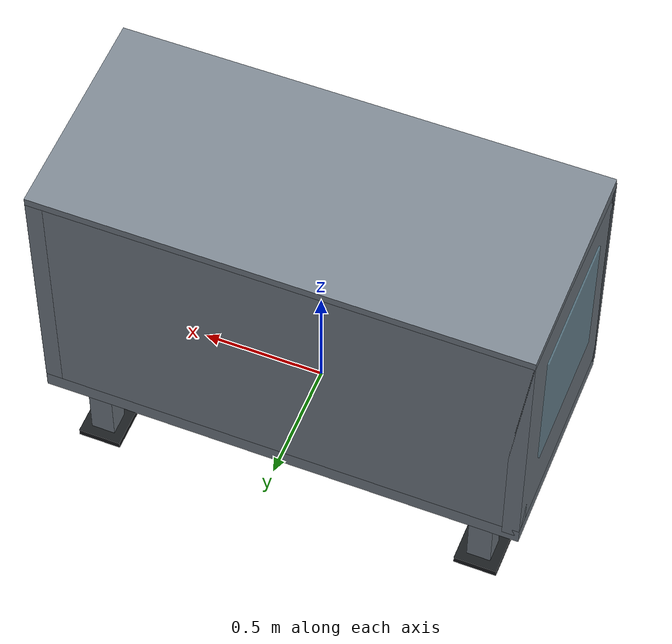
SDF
<?xml version="1.0"?>
<sdf version="1.9"><model name="medium_glovebox_10_ports"><static>true</static><link name="glovebox">
<visual name="floor_visual"><pose>0 0 0.035 0 0 0</pose><geometry><box><size>2 0.9 0.07</size></box></geometry><material><ambient>0.48 0.52 0.56 1</ambient><diffuse>0.48 0.52 0.56 1</diffuse><specular>0.65 0.65 0.65 1</specular></material><cast_shadows>true</cast_shadows></visual>
<collision name="floor_collision"><pose>0 0 0.035 0 0 0</pose><geometry><box><size>2 0.9 0.07</size></box></geometry></collision>
<visual name="roof_visual"><pose>0 0 1.165 0 0 0</pose><geometry><box><size>2 0.9 0.07</size></box></geometry><material><ambient>0.48 0.52 0.56 1</ambient><diffuse>0.48 0.52 0.56 1</diffuse><specular>0.65 0.65 0.65 1</specular></material><cast_shadows>true</cast_shadows></visual>
<collision name="roof_collision"><pose>0 0 1.165 0 0 0</pose><geometry><box><size>2 0.9 0.07</size></box></geometry></collision>
<visual name="left_wall_visual"><pose>-0.965 0 0.60 0 0 0</pose><geometry><box><size>0.07 0.9 1.13</size></box></geometry><material><ambient>0.48 0.52 0.56 1</ambient><diffuse>0.48 0.52 0.56 1</diffuse><specular>0.65 0.65 0.65 1</specular></material><cast_shadows>true</cast_shadows></visual>
<collision name="left_wall_collision"><pose>-0.965 0 0.60 0 0 0</pose><geometry><box><size>0.07 0.9 1.13</size></box></geometry></collision>
<visual name="right_wall_visual"><pose>0.965 0 0.60 0 0 0</pose><geometry><box><size>0.07 0.9 1.13</size></box></geometry><material><ambient>0.48 0.52 0.56 1</ambient><diffuse>0.48 0.52 0.56 1</diffuse><specular>0.65 0.65 0.65 1</specular></material><cast_shadows>true</cast_shadows></visual>
<collision name="right_wall_collision"><pose>0.965 0 0.60 0 0 0</pose><geometry><box><size>0.07 0.9 1.13</size></box></geometry></collision>
<visual name="back_panel_visual"><pose>0 0.415 0.60 0 0 0</pose><geometry><box><size>2 0.07 1.13</size></box></geometry><material><ambient>0.48 0.52 0.56 1</ambient><diffuse>0.48 0.52 0.56 1</diffuse><specular>0.65 0.65 0.65 1</specular></material><cast_shadows>true</cast_shadows></visual>
<collision name="back_panel_collision"><pose>0 0.415 0.60 0 0 0</pose><geometry><box><size>2 0.07 1.13</size></box></geometry></collision>
<visual name="front_top_rail_visual"><pose>0 -0.438 1.105 0 0 0</pose><geometry><box><size>2 0.045 0.12</size></box></geometry><material><ambient>0.30 0.33 0.36 1</ambient><diffuse>0.30 0.33 0.36 1</diffuse><specular>0.65 0.65 0.65 1</specular></material><cast_shadows>true</cast_shadows></visual>
<collision name="front_top_rail_collision"><pose>0 -0.438 1.105 0 0 0</pose><geometry><box><size>2 0.045 0.12</size></box></geometry></collision>
<visual name="front_bottom_rail_visual"><pose>0 -0.438 0.095 0 0 0</pose><geometry><box><size>2 0.045 0.12</size></box></geometry><material><ambient>0.30 0.33 0.36 1</ambient><diffuse>0.30 0.33 0.36 1</diffuse><specular>0.65 0.65 0.65 1</specular></material><cast_shadows>true</cast_shadows></visual>
<collision name="front_bottom_rail_collision"><pose>0 -0.438 0.095 0 0 0</pose><geometry><box><size>2 0.045 0.12</size></box></geometry></collision>
<visual name="front_left_stile_visual"><pose>-0.94 -0.438 0.60 0 0 0</pose><geometry><box><size>0.12 0.045 0.90</size></box></geometry><material><ambient>0.30 0.33 0.36 1</ambient><diffuse>0.30 0.33 0.36 1</diffuse><specular>0.65 0.65 0.65 1</specular></material><cast_shadows>true</cast_shadows></visual>
<collision name="front_left_stile_collision"><pose>-0.94 -0.438 0.60 0 0 0</pose><geometry><box><size>0.12 0.045 0.90</size></box></geometry></collision>
<visual name="front_right_stile_visual"><pose>0.94 -0.438 0.60 0 0 0</pose><geometry><box><size>0.12 0.045 0.90</size></box></geometry><material><ambient>0.30 0.33 0.36 1</ambient><diffuse>0.30 0.33 0.36 1</diffuse><specular>0.65 0.65 0.65 1</specular></material><cast_shadows>true</cast_shadows></visual>
<collision name="front_right_stile_collision"><pose>0.94 -0.438 0.60 0 0 0</pose><geometry><box><size>0.12 0.045 0.90</size></box></geometry></collision>
<visual name="front_window_continuous_visual"><pose>0 -0.446 0.60 0 0 0</pose><geometry><box><size>1.76 0.012 0.88</size></box></geometry><material><ambient>0.52 0.82 0.92 0.30</ambient><diffuse>0.52 0.82 0.92 0.30</diffuse><specular>0.65 0.65 0.65 1</specular></material><cast_shadows>false</cast_shadows></visual>
<visual name="left_window_visual"><pose>-1.001 0 0.68 0 0 0</pose><geometry><box><size>0.012 0.58 0.62</size></box></geometry><material><ambient>0.52 0.82 0.92 0.30</ambient><diffuse>0.52 0.82 0.92 0.30</diffuse><specular>0.65 0.65 0.65 1</specular></material><cast_shadows>false</cast_shadows></visual>
<visual name="right_window_visual"><pose>1.001 0 0.68 0 0 0</pose><geometry><box><size>0.012 0.58 0.62</size></box></geometry><material><ambient>0.52 0.82 0.92 0.30</ambient><diffuse>0.52 0.82 0.92 0.30</diffuse><specular>0.65 0.65 0.65 1</specular></material><cast_shadows>false</cast_shadows></visual>
<visual name="port_01_smooth_ring_visual"><pose>-0.70 -0.485 0.42 0 0 0</pose><geometry><mesh><uri>entry_port_ring.obj</uri></mesh></geometry><material><ambient>0.68 0.71 0.74 1</ambient><diffuse>0.68 0.71 0.74 1</diffuse><specular>0.75 0.75 0.75 1</specular></material></visual>
<visual name="port_02_smooth_ring_visual"><pose>-0.35 -0.485 0.42 0 0 0</pose><geometry><mesh><uri>entry_port_ring.obj</uri></mesh></geometry><material><ambient>0.68 0.71 0.74 1</ambient><diffuse>0.68 0.71 0.74 1</diffuse><specular>0.75 0.75 0.75 1</specular></material></visual>
<visual name="port_03_smooth_ring_visual"><pose>0.00 -0.485 0.42 0 0 0</pose><geometry><mesh><uri>entry_port_ring.obj</uri></mesh></geometry><material><ambient>0.68 0.71 0.74 1</ambient><diffuse>0.68 0.71 0.74 1</diffuse><specular>0.75 0.75 0.75 1</specular></material></visual>
<visual name="port_04_smooth_ring_visual"><pose>0.35 -0.485 0.42 0 0 0</pose><geometry><mesh><uri>entry_port_ring.obj</uri></mesh></geometry><material><ambient>0.68 0.71 0.74 1</ambient><diffuse>0.68 0.71 0.74 1</diffuse><specular>0.75 0.75 0.75 1</specular></material></visual>
<visual name="port_05_smooth_ring_visual"><pose>0.70 -0.485 0.42 0 0 0</pose><geometry><mesh><uri>entry_port_ring.obj</uri></mesh></geometry><material><ambient>0.68 0.71 0.74 1</ambient><diffuse>0.68 0.71 0.74 1</diffuse><specular>0.75 0.75 0.75 1</specular></material></visual>
<visual name="port_06_smooth_ring_visual"><pose>-0.70 -0.485 0.82 0 0 0</pose><geometry><mesh><uri>entry_port_ring.obj</uri></mesh></geometry><material><ambient>0.68 0.71 0.74 1</ambient><diffuse>0.68 0.71 0.74 1</diffuse><specular>0.75 0.75 0.75 1</specular></material></visual>
<visual name="port_07_smooth_ring_visual"><pose>-0.35 -0.485 0.82 0 0 0</pose><geometry><mesh><uri>entry_port_ring.obj</uri></mesh></geometry><material><ambient>0.68 0.71 0.74 1</ambient><diffuse>0.68 0.71 0.74 1</diffuse><specular>0.75 0.75 0.75 1</specular></material></visual>
<visual name="port_08_smooth_ring_visual"><pose>0.00 -0.485 0.82 0 0 0</pose><geometry><mesh><uri>entry_port_ring.obj</uri></mesh></geometry><material><ambient>0.68 0.71 0.74 1</ambient><diffuse>0.68 0.71 0.74 1</diffuse><specular>0.75 0.75 0.75 1</specular></material></visual>
<visual name="port_09_smooth_ring_visual"><pose>0.35 -0.485 0.82 0 0 0</pose><geometry><mesh><uri>entry_port_ring.obj</uri></mesh></geometry><material><ambient>0.68 0.71 0.74 1</ambient><diffuse>0.68 0.71 0.74 1</diffuse><specular>0.75 0.75 0.75 1</specular></material></visual>
<visual name="port_10_smooth_ring_visual"><pose>0.70 -0.485 0.82 0 0 0</pose><geometry><mesh><uri>entry_port_ring.obj</uri></mesh></geometry><material><ambient>0.68 0.71 0.74 1</ambient><diffuse>0.68 0.71 0.74 1</diffuse><specular>0.75 0.75 0.75 1</specular></material></visual>
<visual name="leg_1_visual"><pose>-0.82 -0.31 -0.18 0 0 0</pose><geometry><box><size>0.10 0.10 0.36</size></box></geometry><material><ambient>0.48 0.52 0.56 1</ambient><diffuse>0.48 0.52 0.56 1</diffuse><specular>0.65 0.65 0.65 1</specular></material><cast_shadows>true</cast_shadows></visual>
<collision name="leg_1_collision"><pose>-0.82 -0.31 -0.18 0 0 0</pose><geometry><box><size>0.10 0.10 0.36</size></box></geometry></collision>
<visual name="foot_1_visual"><pose>-0.82 -0.31 -0.375 0 0 0</pose><geometry><box><size>0.18 0.18 0.03</size></box></geometry><material><ambient>0.10 0.11 0.12 1</ambient><diffuse>0.10 0.11 0.12 1</diffuse><specular>0.65 0.65 0.65 1</specular></material><cast_shadows>true</cast_shadows></visual>
<collision name="foot_1_collision"><pose>-0.82 -0.31 -0.375 0 0 0</pose><geometry><box><size>0.18 0.18 0.03</size></box></geometry></collision>
<visual name="leg_2_visual"><pose>0.82 -0.31 -0.18 0 0 0</pose><geometry><box><size>0.10 0.10 0.36</size></box></geometry><material><ambient>0.48 0.52 0.56 1</ambient><diffuse>0.48 0.52 0.56 1</diffuse><specular>0.65 0.65 0.65 1</specular></material><cast_shadows>true</cast_shadows></visual>
<collision name="leg_2_collision"><pose>0.82 -0.31 -0.18 0 0 0</pose><geometry><box><size>0.10 0.10 0.36</size></box></geometry></collision>
<visual name="foot_2_visual"><pose>0.82 -0.31 -0.375 0 0 0</pose><geometry><box><size>0.18 0.18 0.03</size></box></geometry><material><ambient>0.10 0.11 0.12 1</ambient><diffuse>0.10 0.11 0.12 1</diffuse><specular>0.65 0.65 0.65 1</specular></material><cast_shadows>true</cast_shadows></visual>
<collision name="foot_2_collision"><pose>0.82 -0.31 -0.375 0 0 0</pose><geometry><box><size>0.18 0.18 0.03</size></box></geometry></collision>
<visual name="leg_3_visual"><pose>-0.82 0.31 -0.18 0 0 0</pose><geometry><box><size>0.10 0.10 0.36</size></box></geometry><material><ambient>0.48 0.52 0.56 1</ambient><diffuse>0.48 0.52 0.56 1</diffuse><specular>0.65 0.65 0.65 1</specular></material><cast_shadows>true</cast_shadows></visual>
<collision name="leg_3_collision"><pose>-0.82 0.31 -0.18 0 0 0</pose><geometry><box><size>0.10 0.10 0.36</size></box></geometry></collision>
<visual name="foot_3_visual"><pose>-0.82 0.31 -0.375 0 0 0</pose><geometry><box><size>0.18 0.18 0.03</size></box></geometry><material><ambient>0.10 0.11 0.12 1</ambient><diffuse>0.10 0.11 0.12 1</diffuse><specular>0.65 0.65 0.65 1</specular></material><cast_shadows>true</cast_shadows></visual>
<collision name="foot_3_collision"><pose>-0.82 0.31 -0.375 0 0 0</pose><geometry><box><size>0.18 0.18 0.03</size></box></geometry></collision>
<visual name="leg_4_visual"><pose>0.82 0.31 -0.18 0 0 0</pose><geometry><box><size>0.10 0.10 0.36</size></box></geometry><material><ambient>0.48 0.52 0.56 1</ambient><diffuse>0.48 0.52 0.56 1</diffuse><specular>0.65 0.65 0.65 1</specular></material><cast_shadows>true</cast_shadows></visual>
<collision name="leg_4_collision"><pose>0.82 0.31 -0.18 0 0 0</pose><geometry><box><size>0.10 0.10 0.36</size></box></geometry></collision>
<visual name="foot_4_visual"><pose>0.82 0.31 -0.375 0 0 0</pose><geometry><box><size>0.18 0.18 0.03</size></box></geometry><material><ambient>0.10 0.11 0.12 1</ambient><diffuse>0.10 0.11 0.12 1</diffuse><specular>0.65 0.65 0.65 1</specular></material><cast_shadows>true</cast_shadows></visual>
<collision name="foot_4_collision"><pose>0.82 0.31 -0.375 0 0 0</pose><geometry><box><size>0.18 0.18 0.03</size></box></geometry></collision>
<light name="internal_left_light" type="point"><pose>-0.58 0.05 1.02 0 0 0</pose><cast_shadows>true</cast_shadows><diffuse>0.95 0.97 1 1</diffuse><specular>0.45 0.45 0.48 1</specular><attenuation><range>5</range><constant>0.7</constant><linear>0.08</linear><quadratic>0.015</quadratic></attenuation></light>
<light name="internal_right_light" type="point"><pose>0.58 0.05 1.02 0 0 0</pose><cast_shadows>true</cast_shadows><diffuse>0.95 0.97 1 1</diffuse><specular>0.45 0.45 0.48 1</specular><attenuation><range>5</range><constant>0.7</constant><linear>0.08</linear><quadratic>0.015</quadratic></attenuation></light>
<light name="front_fill_light" type="spot"><pose>0 -1.35 1.35 0.40 0 0</pose><cast_shadows>false</cast_shadows><diffuse>0.88 0.91 0.96 1</diffuse><specular>0.35 0.35 0.38 1</specular><direction>0 1 -0.22</direction><attenuation><range>6</range><constant>0.8</constant><linear>0.06</linear><quadratic>0.01</quadratic></attenuation><spot><inner_angle>0.65</inner_angle><outer_angle>1.20</outer_angle><falloff>0.8</falloff></spot></light>
</link></model></sdf>
